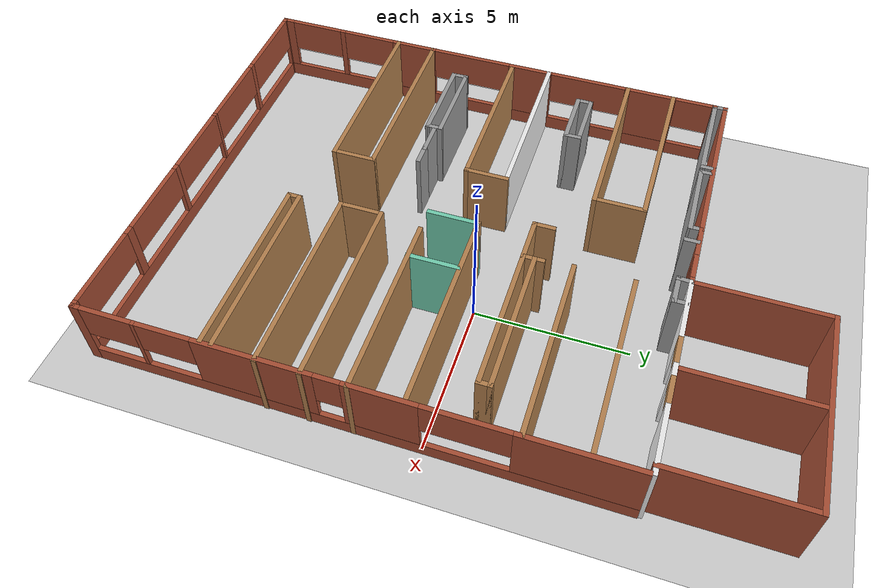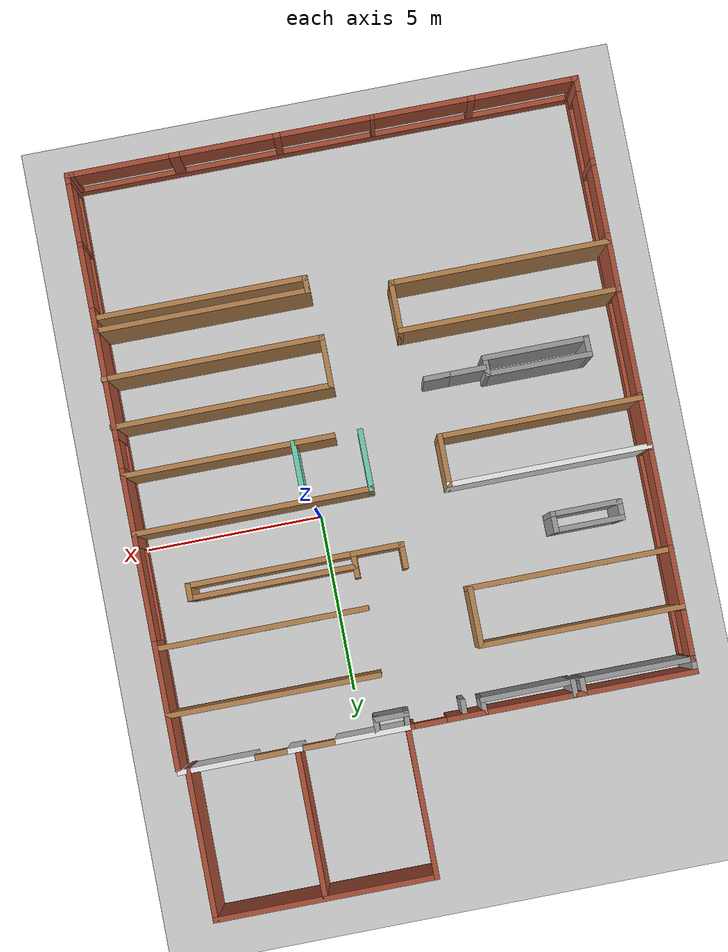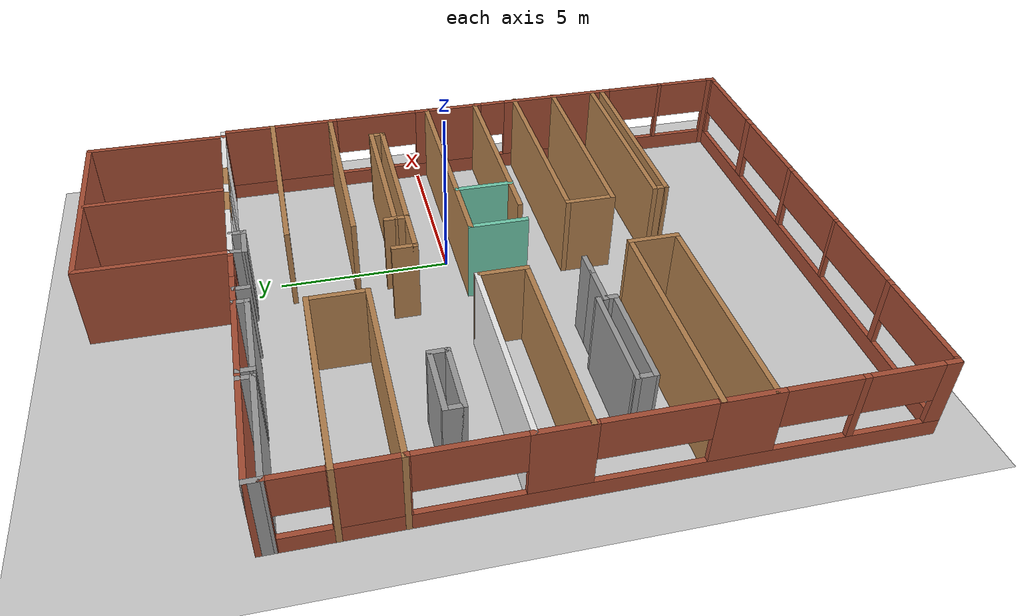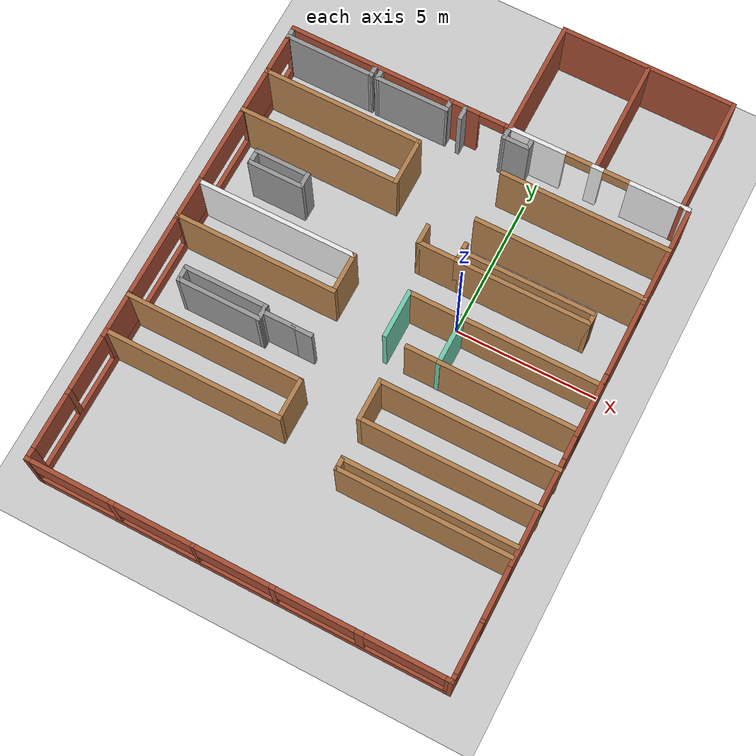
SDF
<sdf version="1.7">
 <world name="default">
  <model name="ground_plane">
   <static>1</static>
   <link name="link">
    <collision name="collision">
     <geometry><plane><normal>0 0 1</normal><size>100 100</size></plane></geometry>
     <surface>
      <contact><collide_bitmask>65535</collide_bitmask></contact>
      <friction><ode><mu>100</mu><mu2>50</mu2></ode></friction>
     </surface>
    </collision>
    <visual name="visual">
     <cast_shadows>0</cast_shadows>
     <geometry><plane><normal>0 0 1</normal><size>100 100</size></plane></geometry>
     <material>
      <script><uri>file://media/materials/scripts/gazebo.material</uri><name>Gazebo/Grey</name></script>
     </material>
    </visual>
   </link>
  </model>
  <model name="1cs_v2">
   <pose>-2.09868 -0.09237 0 0 -0 0</pose>
   <link name="Wall_0">
    <pose>-7.1889 -2.22765 0 0 -0 -1.5708</pose>
    <visual name="Wall_0_Visual_0">
     <pose>-8.16435 0 1.25 0 -0 0</pose>
     <geometry><box><size>0.171298 0.15 2.5</size></box></geometry>
     <material>
      <script><uri>file://media/materials/scripts/gazebo.material</uri><name>Gazebo/Bricks</name></script>
      <ambient>1 1 1 1</ambient>
     </material>
     <meta><layer>0</layer></meta>
    </visual>
    <collision name="Wall_0_Collision_0">
     <geometry><box><size>0.171298 0.15 2.5</size></box></geometry>
     <pose>-8.16435 0 1.25 0 -0 0</pose>
    </collision>
    <visual name="Wall_0_Visual_1">
     <pose>0.085649 0 0.25 0 -0 0</pose>
     <geometry><box><size>16.3287 0.15 0.5</size></box></geometry>
     <material>
      <script><uri>file://media/materials/scripts/gazebo.material</uri><name>Gazebo/Bricks</name></script>
      <ambient>1 1 1 1</ambient>
     </material>
     <meta><layer>0</layer></meta>
    </visual>
    <collision name="Wall_0_Collision_1">
     <geometry><box><size>16.3287 0.15 0.5</size></box></geometry>
     <pose>0.085649 0 0.25 0 -0 0</pose>
    </collision>
    <visual name="Wall_0_Visual_2">
     <pose>-5.91311 0 1.5 0 -0 0</pose>
     <geometry><box><size>1.8087 0.15 2</size></box></geometry>
     <material>
      <script><uri>file://media/materials/scripts/gazebo.material</uri><name>Gazebo/Bricks</name></script>
      <ambient>1 1 1 1</ambient>
     </material>
     <meta><layer>0</layer></meta>
    </visual>
    <collision name="Wall_0_Collision_2">
     <geometry><box><size>1.8087 0.15 2</size></box></geometry>
     <pose>-5.91311 0 1.5 0 -0 0</pose>
    </collision>
    <visual name="Wall_0_Visual_3">
     <pose>-1.54382 0 1.5 0 -0 0</pose>
     <geometry><box><size>1.60965 0.15 2</size></box></geometry>
     <material>
      <script><uri>file://media/materials/scripts/gazebo.material</uri><name>Gazebo/Bricks</name></script>
      <ambient>1 1 1 1</ambient>
     </material>
     <meta><layer>0</layer></meta>
    </visual>
    <collision name="Wall_0_Collision_3">
     <geometry><box><size>1.60965 0.15 2</size></box></geometry>
     <pose>-1.54382 0 1.5 0 -0 0</pose>
    </collision>
    <visual name="Wall_0_Visual_4">
     <pose>2.92476 0 1.5 0 -0 0</pose>
     <geometry><box><size>1.6805 0.15 2</size></box></geometry>
     <material>
      <script><uri>file://media/materials/scripts/gazebo.material</uri><name>Gazebo/Bricks</name></script>
      <ambient>1 1 1 1</ambient>
     </material>
     <meta><layer>0</layer></meta>
    </visual>
    <collision name="Wall_0_Collision_4">
     <geometry><box><size>1.6805 0.15 2</size></box></geometry>
     <pose>2.92476 0 1.5 0 -0 0</pose>
    </collision>
    <visual name="Wall_0_Visual_5">
     <pose>5.78474 0 1.5 0 -0 0</pose>
     <geometry><box><size>0.188569 0.15 2</size></box></geometry>
     <material>
      <script><uri>file://media/materials/scripts/gazebo.material</uri><name>Gazebo/Bricks</name></script>
      <ambient>1 1 1 1</ambient>
     </material>
     <meta><layer>0</layer></meta>
    </visual>
    <collision name="Wall_0_Collision_5">
     <geometry><box><size>0.188569 0.15 2</size></box></geometry>
     <pose>5.78474 0 1.5 0 -0 0</pose>
    </collision>
    <visual name="Wall_0_Visual_6">
     <pose>8.02724 0 1.5 0 -0 0</pose>
     <geometry><box><size>0.445524 0.15 2</size></box></geometry>
     <material>
      <script><uri>file://media/materials/scripts/gazebo.material</uri><name>Gazebo/Bricks</name></script>
      <ambient>1 1 1 1</ambient>
     </material>
     <meta><layer>0</layer></meta>
    </visual>
    <collision name="Wall_0_Collision_6">
     <geometry><box><size>0.445524 0.15 2</size></box></geometry>
     <pose>8.02724 0 1.5 0 -0 0</pose>
    </collision>
    <visual name="Wall_0_Visual_7">
     <pose>-7.44808 0 1.9 0 -0 0</pose>
     <geometry><box><size>1.26125 0.15 1.2</size></box></geometry>
     <material>
      <script><uri>file://media/materials/scripts/gazebo.material</uri><name>Gazebo/Bricks</name></script>
      <ambient>1 1 1 1</ambient>
     </material>
     <meta><layer>0</layer></meta>
    </visual>
    <collision name="Wall_0_Collision_7">
     <geometry><box><size>1.26125 0.15 1.2</size></box></geometry>
     <pose>-7.44808 0 1.9 0 -0 0</pose>
    </collision>
    <visual name="Wall_0_Visual_8">
     <pose>-3.6787 0 1.9 0 -0 0</pose>
     <geometry><box><size>2.66011 0.15 1.2</size></box></geometry>
     <material>
      <script><uri>file://media/materials/scripts/gazebo.material</uri><name>Gazebo/Bricks</name></script>
      <ambient>1 1 1 1</ambient>
     </material>
     <meta><layer>0</layer></meta>
    </visual>
    <collision name="Wall_0_Collision_8">
     <geometry><box><size>2.66011 0.15 1.2</size></box></geometry>
     <pose>-3.6787 0 1.9 0 -0 0</pose>
    </collision>
    <visual name="Wall_0_Visual_9">
     <pose>0.672759 0 1.9 0 -0 0</pose>
     <geometry><box><size>2.82351 0.15 1.2</size></box></geometry>
     <material>
      <script><uri>file://media/materials/scripts/gazebo.material</uri><name>Gazebo/Bricks</name></script>
      <ambient>1 1 1 1</ambient>
     </material>
     <meta><layer>0</layer></meta>
    </visual>
    <collision name="Wall_0_Collision_9">
     <geometry><box><size>2.82351 0.15 1.2</size></box></geometry>
     <pose>0.672759 0 1.9 0 -0 0</pose>
    </collision>
    <visual name="Wall_0_Visual_10">
     <pose>4.72774 0 1.9 0 -0 0</pose>
     <geometry><box><size>1.92545 0.15 1.2</size></box></geometry>
     <material>
      <script><uri>file://media/materials/scripts/gazebo.material</uri><name>Gazebo/Bricks</name></script>
      <ambient>1 1 1 1</ambient>
     </material>
     <meta><layer>0</layer></meta>
    </visual>
    <collision name="Wall_0_Collision_10">
     <geometry><box><size>1.92545 0.15 1.2</size></box></geometry>
     <pose>4.72774 0 1.9 0 -0 0</pose>
    </collision>
    <visual name="Wall_0_Visual_11">
     <pose>6.84175 0 1.9 0 -0 0</pose>
     <geometry><box><size>1.92545 0.15 1.2</size></box></geometry>
     <material>
      <script><uri>file://media/materials/scripts/gazebo.material</uri><name>Gazebo/Bricks</name></script>
      <ambient>1 1 1 1</ambient>
     </material>
     <meta><layer>0</layer></meta>
    </visual>
    <collision name="Wall_0_Collision_11">
     <geometry><box><size>1.92545 0.15 1.2</size></box></geometry>
     <pose>6.84175 0 1.9 0 -0 0</pose>
    </collision>
   </link>
   <link name="Wall_10">
    <pose>7.1611 -2.10265 0 0 -0 1.5708</pose>
    <visual name="Wall_10_Visual_0">
     <pose>-8.22126 0 1.25 0 -0 0</pose>
     <geometry><box><size>0.307478 0.15 2.5</size></box></geometry>
     <material>
      <script><uri>file://media/materials/scripts/gazebo.material</uri><name>Gazebo/Bricks</name></script>
      <ambient>1 1 1 1</ambient>
     </material>
     <meta><layer>0</layer></meta>
    </visual>
    <collision name="Wall_10_Collision_0">
     <geometry><box><size>0.307478 0.15 2.5</size></box></geometry>
     <pose>-8.22126 0 1.25 0 -0 0</pose>
    </collision>
    <visual name="Wall_10_Visual_1">
     <pose>0.153739 0 0.25 0 -0 0</pose>
     <geometry><box><size>16.4425 0.15 0.5</size></box></geometry>
     <material>
      <script><uri>file://media/materials/scripts/gazebo.material</uri><name>Gazebo/Bricks</name></script>
      <ambient>1 1 1 1</ambient>
     </material>
     <meta><layer>0</layer></meta>
    </visual>
    <collision name="Wall_10_Collision_1">
     <geometry><box><size>16.4425 0.15 0.5</size></box></geometry>
     <pose>0.153739 0 0.25 0 -0 0</pose>
    </collision>
    <visual name="Wall_10_Visual_2">
     <pose>-6.34004 0 1.5 0 -0 0</pose>
     <geometry><box><size>0.121166 0.15 2</size></box></geometry>
     <material>
      <script><uri>file://media/materials/scripts/gazebo.material</uri><name>Gazebo/Bricks</name></script>
      <ambient>1 1 1 1</ambient>
     </material>
     <meta><layer>0</layer></meta>
    </visual>
    <collision name="Wall_10_Collision_2">
     <geometry><box><size>0.121166 0.15 2</size></box></geometry>
     <pose>-6.34004 0 1.5 0 -0 0</pose>
    </collision>
    <visual name="Wall_10_Visual_3">
     <pose>-2.68236 0 1.5 0 -0 0</pose>
     <geometry><box><size>3.70831 0.15 2</size></box></geometry>
     <material>
      <script><uri>file://media/materials/scripts/gazebo.material</uri><name>Gazebo/Bricks</name></script>
      <ambient>1 1 1 1</ambient>
     </material>
     <meta><layer>0</layer></meta>
    </visual>
    <collision name="Wall_10_Collision_3">
     <geometry><box><size>3.70831 0.15 2</size></box></geometry>
     <pose>-2.68236 0 1.5 0 -0 0</pose>
    </collision>
    <visual name="Wall_10_Visual_4">
     <pose>1.08606 0 1.5 0 -0 0</pose>
     <geometry><box><size>2.22852 0.15 2</size></box></geometry>
     <material>
      <script><uri>file://media/materials/scripts/gazebo.material</uri><name>Gazebo/Bricks</name></script>
      <ambient>1 1 1 1</ambient>
     </material>
     <meta><layer>0</layer></meta>
    </visual>
    <collision name="Wall_10_Collision_4">
     <geometry><box><size>2.22852 0.15 2</size></box></geometry>
     <pose>1.08606 0 1.5 0 -0 0</pose>
    </collision>
    <visual name="Wall_10_Visual_5">
     <pose>6.58035 0 1.5 0 -0 0</pose>
     <geometry><box><size>3.5893 0.15 2</size></box></geometry>
     <material>
      <script><uri>file://media/materials/scripts/gazebo.material</uri><name>Gazebo/Bricks</name></script>
      <ambient>1 1 1 1</ambient>
     </material>
     <meta><layer>0</layer></meta>
    </visual>
    <collision name="Wall_10_Collision_5">
     <geometry><box><size>3.5893 0.15 2</size></box></geometry>
     <pose>6.58035 0 1.5 0 -0 0</pose>
    </collision>
    <visual name="Wall_10_Visual_6">
     <pose>-7.23407 0 1.9 0 -0 0</pose>
     <geometry><box><size>1.6669 0.15 1.2</size></box></geometry>
     <material>
      <script><uri>file://media/materials/scripts/gazebo.material</uri><name>Gazebo/Bricks</name></script>
      <ambient>1 1 1 1</ambient>
     </material>
     <meta><layer>0</layer></meta>
    </visual>
    <collision name="Wall_10_Collision_6">
     <geometry><box><size>1.6669 0.15 1.2</size></box></geometry>
     <pose>-7.23407 0 1.9 0 -0 0</pose>
    </collision>
    <visual name="Wall_10_Visual_7">
     <pose>-5.40799 0 1.9 0 -0 0</pose>
     <geometry><box><size>1.74294 0.15 1.2</size></box></geometry>
     <material>
      <script><uri>file://media/materials/scripts/gazebo.material</uri><name>Gazebo/Bricks</name></script>
      <ambient>1 1 1 1</ambient>
     </material>
     <meta><layer>0</layer></meta>
    </visual>
    <collision name="Wall_10_Collision_7">
     <geometry><box><size>1.74294 0.15 1.2</size></box></geometry>
     <pose>-5.40799 0 1.9 0 -0 0</pose>
    </collision>
    <visual name="Wall_10_Visual_8">
     <pose>-0.428203 0 1.9 0 -0 0</pose>
     <geometry><box><size>0.8 0.15 1.2</size></box></geometry>
     <material>
      <script><uri>file://media/materials/scripts/gazebo.material</uri><name>Gazebo/Bricks</name></script>
      <ambient>1 1 1 1</ambient>
     </material>
     <meta><layer>0</layer></meta>
    </visual>
    <collision name="Wall_10_Collision_8">
     <geometry><box><size>0.8 0.15 1.2</size></box></geometry>
     <pose>-0.428203 0 1.9 0 -0 0</pose>
    </collision>
    <visual name="Wall_10_Visual_9">
     <pose>3.49301 0 1.9 0 -0 0</pose>
     <geometry><box><size>2.58537 0.15 1.2</size></box></geometry>
     <material>
      <script><uri>file://media/materials/scripts/gazebo.material</uri><name>Gazebo/Bricks</name></script>
      <ambient>1 1 1 1</ambient>
     </material>
     <meta><layer>0</layer></meta>
    </visual>
    <collision name="Wall_10_Collision_9">
     <geometry><box><size>2.58537 0.15 1.2</size></box></geometry>
     <pose>3.49301 0 1.9 0 -0 0</pose>
    </collision>
   </link>
   <link name="Wall_101">
    <collision name="Wall_101_Collision">
     <geometry><box><size>2.66781 0.15 2.5</size></box></geometry>
     <pose>0 0 1.25 0 -0 0</pose>
    </collision>
    <visual name="Wall_101_Visual">
     <pose>0 0 1.25 0 -0 0</pose>
     <geometry><box><size>2.66781 0.15 2.5</size></box></geometry>
     <material>
      <script><uri>file://media/materials/scripts/gazebo.material</uri><name>Gazebo/Grey</name></script>
      <ambient>1 1 1 1</ambient>
     </material>
     <meta><layer>0</layer></meta>
    </visual>
    <pose>-2.59778 5.93848 0 0 -0 0.007052</pose>
   </link>
   <link name="Wall_12">
    <collision name="Wall_12_Collision">
     <geometry><box><size>0.532123 0.15 2.5</size></box></geometry>
     <pose>0 0 1.25 0 -0 0</pose>
    </collision>
    <visual name="Wall_12_Visual">
     <pose>0 0 1.25 0 -0 0</pose>
     <geometry><box><size>0.532123 0.15 2.5</size></box></geometry>
     <material>
      <script><uri>file://media/materials/scripts/gazebo.material</uri><name>Gazebo/Grey</name></script>
      <ambient>1 1 1 1</ambient>
     </material>
     <meta><layer>0</layer></meta>
    </visual>
    <pose>0.790397 6.11196 0 0 -0 -1.63317</pose>
   </link>
   <link name="Wall_14">
    <collision name="Wall_14_Collision">
     <geometry><box><size>1 0.15 2.5</size></box></geometry>
     <pose>0 0 1.25 0 -0 0</pose>
    </collision>
    <visual name="Wall_14_Visual">
     <pose>0 0 1.25 0 -0 0</pose>
     <geometry><box><size>1 0.15 2.5</size></box></geometry>
     <material>
      <script><uri>file://media/materials/scripts/gazebo.material</uri><name>Gazebo/Grey</name></script>
      <ambient>1 1 1 1</ambient>
     </material>
     <meta><layer>0</layer></meta>
    </visual>
    <pose>1.20349 5.92127 0 0 -0 0</pose>
   </link>
   <link name="Wall_15">
    <collision name="Wall_15_Collision">
     <geometry><box><size>0.5 0.15 2.5</size></box></geometry>
     <pose>0 0 1.25 0 -0 0</pose>
    </collision>
    <visual name="Wall_15_Visual">
     <pose>0 0 1.25 0 -0 0</pose>
     <geometry><box><size>0.5 0.15 2.5</size></box></geometry>
     <material>
      <script><uri>file://media/materials/scripts/gazebo.material</uri><name>Gazebo/Grey</name></script>
      <ambient>1 1 1 1</ambient>
     </material>
     <meta><layer>0</layer></meta>
    </visual>
    <pose>1.62849 6.09627 0 0 -0 1.5708</pose>
   </link>
   <link name="Wall_17">
    <collision name="Wall_17_Collision">
     <geometry><box><size>6 0.15 2.5</size></box></geometry>
     <pose>0 0 1.25 0 -0 0</pose>
    </collision>
    <visual name="Wall_17_Visual">
     <pose>0 0 1.25 0 -0 0</pose>
     <geometry><box><size>6 0.15 2.5</size></box></geometry>
     <material>
      <script><uri>file://media/materials/scripts/gazebo.material</uri><name>Gazebo/Wood</name></script>
      <ambient>1 1 1 1</ambient>
     </material>
     <meta><layer>0</layer></meta>
    </visual>
    <pose>4.23059 4.75114 0 0 -0 3.14159</pose>
   </link>
   <link name="Wall_19">
    <collision name="Wall_19_Collision">
     <geometry><box><size>6 0.15 2.5</size></box></geometry>
     <pose>0 0 1.25 0 -0 0</pose>
    </collision>
    <visual name="Wall_19_Visual">
     <pose>0 0 1.25 0 -0 0</pose>
     <geometry><box><size>6 0.15 2.5</size></box></geometry>
     <material>
      <script><uri>file://media/materials/scripts/gazebo.material</uri><name>Gazebo/Wood</name></script>
      <ambient>1 1 1 1</ambient>
     </material>
     <meta><layer>0</layer></meta>
    </visual>
    <pose>4.23059 2.90114 0 0 -0 0</pose>
   </link>
   <link name="Wall_21">
    <collision name="Wall_21_Collision">
     <geometry><box><size>5.75 0.15 2.5</size></box></geometry>
     <pose>0 0 1.25 0 -0 0</pose>
    </collision>
    <visual name="Wall_21_Visual">
     <pose>0 0 1.25 0 -0 0</pose>
     <geometry><box><size>5.75 0.15 2.5</size></box></geometry>
     <material>
      <script><uri>file://media/materials/scripts/gazebo.material</uri><name>Gazebo/Wood</name></script>
      <ambient>1 1 1 1</ambient>
     </material>
     <meta><layer>0</layer></meta>
    </visual>
    <pose>-4.39224 4.49027 0 0 -0 0</pose>
   </link>
   <link name="Wall_22">
    <collision name="Wall_22_Collision">
     <geometry><box><size>1.75 0.15 2.5</size></box></geometry>
     <pose>0 0 1.25 0 -0 0</pose>
    </collision>
    <visual name="Wall_22_Visual">
     <pose>0 0 1.25 0 -0 0</pose>
     <geometry><box><size>1.75 0.15 2.5</size></box></geometry>
     <material>
      <script><uri>file://media/materials/scripts/gazebo.material</uri><name>Gazebo/Wood</name></script>
      <ambient>1 1 1 1</ambient>
     </material>
     <meta><layer>0</layer></meta>
    </visual>
    <pose>-1.59224 3.69027 0 0 -0 -1.5708</pose>
   </link>
   <link name="Wall_23">
    <collision name="Wall_23_Collision">
     <geometry><box><size>5.75 0.15 2.5</size></box></geometry>
     <pose>0 0 1.25 0 -0 0</pose>
    </collision>
    <visual name="Wall_23_Visual">
     <pose>0 0 1.25 0 -0 0</pose>
     <geometry><box><size>5.75 0.15 2.5</size></box></geometry>
     <material>
      <script><uri>file://media/materials/scripts/gazebo.material</uri><name>Gazebo/Wood</name></script>
      <ambient>1 1 1 1</ambient>
     </material>
     <meta><layer>0</layer></meta>
    </visual>
    <pose>-4.39224 2.89027 0 0 -0 3.14159</pose>
   </link>
   <link name="Wall_27">
    <collision name="Wall_27_Collision">
     <geometry><box><size>0.5 0.15 2.5</size></box></geometry>
     <pose>0 0 1.25 0 -0 0</pose>
    </collision>
    <visual name="Wall_27_Visual">
     <pose>0 0 1.25 0 -0 0</pose>
     <geometry><box><size>0.5 0.15 2.5</size></box></geometry>
     <material>
      <script><uri>file://media/materials/scripts/gazebo.material</uri><name>Gazebo/Grey</name></script>
      <ambient>1 1 1 1</ambient>
     </material>
     <meta><layer>0</layer></meta>
    </visual>
    <pose>-0.79635 6.07769 0 0 -0 1.5708</pose>
   </link>
   <link name="Wall_3">
    <collision name="Wall_3_Collision">
     <geometry><box><size>0.5 0.15 2.5</size></box></geometry>
     <pose>0 0 1.25 0 -0 0</pose>
    </collision>
    <visual name="Wall_3_Visual">
     <pose>0 0 1.25 0 -0 0</pose>
     <geometry><box><size>0.5 0.15 2.5</size></box></geometry>
     <material>
      <script><uri>file://media/materials/scripts/gazebo.material</uri><name>Gazebo/Grey</name></script>
      <ambient>1 1 1 1</ambient>
     </material>
     <meta><layer>0</layer></meta>
    </visual>
    <pose>-1.3389 6.12235 0 0 -0 1.5708</pose>
   </link>
   <link name="Wall_33">
    <collision name="Wall_33_Collision">
     <geometry><box><size>4.25 0.15 2.5</size></box></geometry>
     <pose>0 0 1.25 0 -0 0</pose>
    </collision>
    <visual name="Wall_33_Visual">
     <pose>0 0 1.25 0 -0 0</pose>
     <geometry><box><size>4.25 0.15 2.5</size></box></geometry>
     <material>
      <script><uri>file://media/materials/scripts/gazebo.material</uri><name>Gazebo/Bricks</name></script>
      <ambient>1 1 1 1</ambient>
     </material>
     <meta><layer>0</layer></meta>
    </visual>
    <pose>0.802307 8.35265 0 0 -0 1.5708</pose>
   </link>
   <link name="Wall_34">
    <collision name="Wall_34_Collision">
     <geometry><box><size>6.25 0.15 2.5</size></box></geometry>
     <pose>0 0 1.25 0 -0 0</pose>
    </collision>
    <visual name="Wall_34_Visual">
     <pose>0 0 1.25 0 -0 0</pose>
     <geometry><box><size>6.25 0.15 2.5</size></box></geometry>
     <material>
      <script><uri>file://media/materials/scripts/gazebo.material</uri><name>Gazebo/Bricks</name></script>
      <ambient>1 1 1 1</ambient>
     </material>
     <meta><layer>0</layer></meta>
    </visual>
    <pose>3.85231 10.4026 0 0 -0 0</pose>
   </link>
   <link name="Wall_35">
    <collision name="Wall_35_Collision">
     <geometry><box><size>4.25 0.15 2.5</size></box></geometry>
     <pose>0 0 1.25 0 -0 0</pose>
    </collision>
    <visual name="Wall_35_Visual">
     <pose>0 0 1.25 0 -0 0</pose>
     <geometry><box><size>4.25 0.15 2.5</size></box></geometry>
     <material>
      <script><uri>file://media/materials/scripts/gazebo.material</uri><name>Gazebo/Bricks</name></script>
      <ambient>1 1 1 1</ambient>
     </material>
     <meta><layer>0</layer></meta>
    </visual>
    <pose>6.90231 8.35265 0 0 -0 -1.5708</pose>
   </link>
   <link name="Wall_37">
    <collision name="Wall_37_Collision">
     <geometry><box><size>4 0.15 2.5</size></box></geometry>
     <pose>0 0 1.25 0 -0 0</pose>
    </collision>
    <visual name="Wall_37_Visual">
     <pose>0 0 1.25 0 -0 0</pose>
     <geometry><box><size>4 0.15 2.5</size></box></geometry>
     <material>
      <script><uri>file://media/materials/scripts/gazebo.material</uri><name>Gazebo/Bricks</name></script>
      <ambient>1 1 1 1</ambient>
     </material>
     <meta><layer>0</layer></meta>
    </visual>
    <pose>3.8726 8.38806 0 0 -0 -1.5708</pose>
   </link>
   <link name="Wall_39">
    <collision name="Wall_39_Collision">
     <geometry><box><size>0.75 0.15 2.5</size></box></geometry>
     <pose>0 0 1.25 0 -0 0</pose>
    </collision>
    <visual name="Wall_39_Visual">
     <pose>0 0 1.25 0 -0 0</pose>
     <geometry><box><size>0.75 0.15 2.5</size></box></geometry>
     <material>
      <script><uri>file://media/materials/scripts/gazebo.material</uri><name>Gazebo/Wood</name></script>
      <ambient>1 1 1 1</ambient>
     </material>
     <meta><layer>0</layer></meta>
    </visual>
    <pose>0.023831 1.66523 0 0 -0 -1.5708</pose>
   </link>
   <link name="Wall_4">
    <pose>-0.268298 6.3 0 0 -0 0.002472</pose>
    <visual name="Wall_4_Visual_0">
     <pose>-0.580437 0 1.25 0 -0 0</pose>
     <geometry><box><size>1.13034 0.15 2.5</size></box></geometry>
     <material>
      <script><uri>file://media/materials/scripts/gazebo.material</uri><name>Gazebo/Bricks</name></script>
      <ambient>1 1 1 1</ambient>
     </material>
     <meta><layer>0</layer></meta>
    </visual>
    <collision name="Wall_4_Collision_0">
     <geometry><box><size>1.13034 0.15 2.5</size></box></geometry>
     <pose>-0.580437 0 1.25 0 -0 0</pose>
    </collision>
    <visual name="Wall_4_Visual_1">
     <pose>1.01517 0 1.25 0 -0 0</pose>
     <geometry><box><size>0.260874 0.15 2.5</size></box></geometry>
     <material>
      <script><uri>file://media/materials/scripts/gazebo.material</uri><name>Gazebo/Bricks</name></script>
      <ambient>1 1 1 1</ambient>
     </material>
     <meta><layer>0</layer></meta>
    </visual>
    <collision name="Wall_4_Collision_1">
     <geometry><box><size>0.260874 0.15 2.5</size></box></geometry>
     <pose>1.01517 0 1.25 0 -0 0</pose>
    </collision>
    <visual name="Wall_4_Visual_2">
     <pose>0.434734 0 2.25 0 -0 0</pose>
     <geometry><box><size>0.9 0.15 0.5</size></box></geometry>
     <material>
      <script><uri>file://media/materials/scripts/gazebo.material</uri><name>Gazebo/Bricks</name></script>
      <ambient>1 1 1 1</ambient>
     </material>
     <meta><layer>0</layer></meta>
    </visual>
    <collision name="Wall_4_Collision_2">
     <geometry><box><size>0.9 0.15 0.5</size></box></geometry>
     <pose>0.434734 0 2.25 0 -0 0</pose>
    </collision>
   </link>
   <link name="Wall_40">
    <collision name="Wall_40_Collision">
     <geometry><box><size>1.5 0.15 2.5</size></box></geometry>
     <pose>0 0 1.25 0 -0 0</pose>
    </collision>
    <visual name="Wall_40_Visual">
     <pose>0 0 1.25 0 -0 0</pose>
     <geometry><box><size>1.5 0.15 2.5</size></box></geometry>
     <material>
      <script><uri>file://media/materials/scripts/gazebo.material</uri><name>Gazebo/Wood</name></script>
      <ambient>1 1 1 1</ambient>
     </material>
     <meta><layer>0</layer></meta>
    </visual>
    <pose>0.698831 1.36523 0 0 -0 0</pose>
   </link>
   <link name="Wall_41">
    <collision name="Wall_41_Collision">
     <geometry><box><size>4.75 0.15 2.5</size></box></geometry>
     <pose>0 0 1.25 0 -0 0</pose>
    </collision>
    <visual name="Wall_41_Visual">
     <pose>0 0 1.25 0 -0 0</pose>
     <geometry><box><size>4.75 0.15 2.5</size></box></geometry>
     <material>
      <script><uri>file://media/materials/scripts/gazebo.material</uri><name>Gazebo/Wood</name></script>
      <ambient>1 1 1 1</ambient>
     </material>
     <meta><layer>0</layer></meta>
    </visual>
    <pose>3.67383 1.36523 0 0 -0 0</pose>
   </link>
   <link name="Wall_42">
    <collision name="Wall_42_Collision">
     <geometry><box><size>0.5 0.15 2.5</size></box></geometry>
     <pose>0 0 1.25 0 -0 0</pose>
    </collision>
    <visual name="Wall_42_Visual">
     <pose>0 0 1.25 0 -0 0</pose>
     <geometry><box><size>0.5 0.15 2.5</size></box></geometry>
     <material>
      <script><uri>file://media/materials/scripts/gazebo.material</uri><name>Gazebo/Wood</name></script>
      <ambient>1 1 1 1</ambient>
     </material>
     <meta><layer>0</layer></meta>
    </visual>
    <pose>5.97383 1.54023 0 0 -0 1.5708</pose>
   </link>
   <link name="Wall_43">
    <collision name="Wall_43_Collision">
     <geometry><box><size>4.75 0.15 2.5</size></box></geometry>
     <pose>0 0 1.25 0 -0 0</pose>
    </collision>
    <visual name="Wall_43_Visual">
     <pose>0 0 1.25 0 -0 0</pose>
     <geometry><box><size>4.75 0.15 2.5</size></box></geometry>
     <material>
      <script><uri>file://media/materials/scripts/gazebo.material</uri><name>Gazebo/Wood</name></script>
      <ambient>1 1 1 1</ambient>
     </material>
     <meta><layer>0</layer></meta>
    </visual>
    <pose>3.67383 1.71523 0 0 -0 3.14159</pose>
   </link>
   <link name="Wall_45">
    <collision name="Wall_45_Collision">
     <geometry><box><size>0.75 0.15 2.5</size></box></geometry>
     <pose>0 0 1.25 0 -0 0</pose>
    </collision>
    <visual name="Wall_45_Visual">
     <pose>0 0 1.25 0 -0 0</pose>
     <geometry><box><size>0.75 0.15 2.5</size></box></geometry>
     <material>
      <script><uri>file://media/materials/scripts/gazebo.material</uri><name>Gazebo/Wood</name></script>
      <ambient>1 1 1 1</ambient>
     </material>
     <meta><layer>0</layer></meta>
    </visual>
    <pose>1.37383 1.66523 0 0 -0 1.5708</pose>
   </link>
   <link name="Wall_47">
    <collision name="Wall_47_Collision">
     <geometry><box><size>1.75 0.15 2.5</size></box></geometry>
     <pose>0 0 1.25 0 -0 0</pose>
    </collision>
    <visual name="Wall_47_Visual">
     <pose>0 0 1.25 0 -0 0</pose>
     <geometry><box><size>1.75 0.15 2.5</size></box></geometry>
     <material>
      <script><uri>file://media/materials/scripts/gazebo.material</uri><name>Gazebo/Grey</name></script>
      <ambient>0.435294 0.796078 0.67451 1</ambient>
     </material>
     <meta><layer>0</layer></meta>
    </visual>
    <pose>0.541626 -1.09292 0 0 -0 1.5708</pose>
   </link>
   <link name="Wall_49">
    <collision name="Wall_49_Collision">
     <geometry><box><size>6.75 0.15 2.5</size></box></geometry>
     <pose>0 0 1.25 0 -0 0</pose>
    </collision>
    <visual name="Wall_49_Visual">
     <pose>0 0 1.25 0 -0 0</pose>
     <geometry><box><size>6.75 0.15 2.5</size></box></geometry>
     <material>
      <script><uri>file://media/materials/scripts/gazebo.material</uri><name>Gazebo/Wood</name></script>
      <ambient>1 1 1 1</ambient>
     </material>
     <meta><layer>0</layer></meta>
    </visual>
    <pose>3.84163 -0.29292 0 0 -0 0</pose>
   </link>
   <link name="Wall_5">
    <pose>3.96426 6.31134 0 0 -0 0.00275</pose>
    <visual name="Wall_5_Visual_0">
     <pose>-2.1918 0 1.25 0 -0 0</pose>
     <geometry><box><size>2.09034 0.15 2.5</size></box></geometry>
     <material><script><name>Gazebo/White</name></script><ambient>1 1 1 1</ambient></material>
     <meta><layer>0</layer></meta>
    </visual>
    <collision name="Wall_5_Collision_0">
     <geometry><box><size>2.09034 0.15 2.5</size></box></geometry>
     <pose>-2.1918 0 1.25 0 -0 0</pose>
    </collision>
    <visual name="Wall_5_Visual_1">
     <pose>-0.031435 0 1.25 0 -0 0</pose>
     <geometry><box><size>0.430392 0.15 2.5</size></box></geometry>
     <material><script><name>Gazebo/White</name></script><ambient>1 1 1 1</ambient></material>
     <meta><layer>0</layer></meta>
    </visual>
    <collision name="Wall_5_Collision_1">
     <geometry><box><size>0.430392 0.15 2.5</size></box></geometry>
     <pose>-0.031435 0 1.25 0 -0 0</pose>
    </collision>
    <visual name="Wall_5_Visual_2">
     <pose>2.16037 0 1.25 0 -0 0</pose>
     <geometry><box><size>2.15321 0.15 2.5</size></box></geometry>
     <material><script><name>Gazebo/White</name></script><ambient>1 1 1 1</ambient></material>
     <meta><layer>0</layer></meta>
    </visual>
    <collision name="Wall_5_Collision_2">
     <geometry><box><size>2.15321 0.15 2.5</size></box></geometry>
     <pose>2.16037 0 1.25 0 -0 0</pose>
    </collision>
    <visual name="Wall_5_Visual_3">
     <pose>-0.69663 0 2.25 0 -0 0</pose>
     <geometry><box><size>0.9 0.15 0.5</size></box></geometry>
     <material>
      <script><uri>file://media/materials/scripts/gazebo.material</uri><name>Gazebo/Wood</name></script>
      <ambient>1 1 1 1</ambient>
     </material>
     <meta><layer>0</layer></meta>
    </visual>
    <collision name="Wall_5_Collision_3">
     <geometry><box><size>0.9 0.15 0.5</size></box></geometry>
     <pose>-0.69663 0 2.25 0 -0 0</pose>
    </collision>
    <visual name="Wall_5_Visual_4">
     <pose>0.633761 0 2.25 0 -0 0</pose>
     <geometry><box><size>0.9 0.15 0.5</size></box></geometry>
     <material>
      <script><uri>file://media/materials/scripts/gazebo.material</uri><name>Gazebo/Wood</name></script>
      <ambient>1 1 1 1</ambient>
     </material>
     <meta><layer>0</layer></meta>
    </visual>
    <collision name="Wall_5_Collision_4">
     <geometry><box><size>0.9 0.15 0.5</size></box></geometry>
     <pose>0.633761 0 2.25 0 -0 0</pose>
    </collision>
   </link>
   <link name="Wall_51">
    <collision name="Wall_51_Collision">
     <geometry><box><size>6 0.15 2.5</size></box></geometry>
     <pose>0 0 1.25 0 -0 0</pose>
    </collision>
    <visual name="Wall_51_Visual">
     <pose>0 0 1.25 0 -0 0</pose>
     <geometry><box><size>6 0.15 2.5</size></box></geometry>
     <material>
      <script><uri>file://media/materials/scripts/gazebo.material</uri><name>Gazebo/Wood</name></script>
      <ambient>1 1 1 1</ambient>
     </material>
     <meta><layer>0</layer></meta>
    </visual>
    <pose>4.24325 -1.92151 0 0 -0 3.14159</pose>
   </link>
   <link name="Wall_53">
    <collision name="Wall_53_Collision">
     <geometry><box><size>1.75 0.15 2.5</size></box></geometry>
     <pose>0 0 1.25 0 -0 0</pose>
    </collision>
    <visual name="Wall_53_Visual">
     <pose>0 0 1.25 0 -0 0</pose>
     <geometry><box><size>1.75 0.15 2.5</size></box></geometry>
     <material>
      <script><uri>file://media/materials/scripts/gazebo.material</uri><name>Gazebo/Grey</name></script>
      <ambient>0.435294 0.796078 0.67451 1</ambient>
     </material>
     <meta><layer>0</layer></meta>
    </visual>
    <pose>2.41126 -1.13203 0 0 -0 -1.5708</pose>
   </link>
   <link name="Wall_55">
    <collision name="Wall_55_Collision">
     <geometry><box><size>2 0.15 2.5</size></box></geometry>
     <pose>0 0 1.25 0 -0 0</pose>
    </collision>
    <visual name="Wall_55_Visual">
     <pose>0 0 1.25 0 -0 0</pose>
     <geometry><box><size>2 0.15 2.5</size></box></geometry>
     <material>
      <script><uri>file://media/materials/scripts/gazebo.material</uri><name>Gazebo/Grey</name></script>
      <ambient>1 1 1 1</ambient>
     </material>
     <meta><layer>0</layer></meta>
    </visual>
    <pose>-5.13352 1.79046 0 0 -0 0</pose>
   </link>
   <link name="Wall_56">
    <collision name="Wall_56_Collision">
     <geometry><box><size>0.594464 0.15 2.5</size></box></geometry>
     <pose>0 0 1.25 0 -0 0</pose>
    </collision>
    <visual name="Wall_56_Visual">
     <pose>0 0 1.25 0 -0 0</pose>
     <geometry><box><size>0.594464 0.15 2.5</size></box></geometry>
     <material>
      <script><uri>file://media/materials/scripts/gazebo.material</uri><name>Gazebo/Grey</name></script>
      <ambient>1 1 1 1</ambient>
     </material>
     <meta><layer>0</layer></meta>
    </visual>
    <pose>-4.20852 1.56823 0 0 -0 -1.5708</pose>
   </link>
   <link name="Wall_57">
    <collision name="Wall_57_Collision">
     <geometry><box><size>2 0.15 2.5</size></box></geometry>
     <pose>0 0 1.25 0 -0 0</pose>
    </collision>
    <visual name="Wall_57_Visual">
     <pose>0 0 1.25 0 -0 0</pose>
     <geometry><box><size>2 0.15 2.5</size></box></geometry>
     <material>
      <script><uri>file://media/materials/scripts/gazebo.material</uri><name>Gazebo/Grey</name></script>
      <ambient>1 1 1 1</ambient>
     </material>
     <meta><layer>0</layer></meta>
    </visual>
    <pose>-5.13352 1.34102 0 0 -0 3.14159</pose>
   </link>
   <link name="Wall_58">
    <collision name="Wall_58_Collision">
     <geometry><box><size>0.594464 0.15 2.5</size></box></geometry>
     <pose>0 0 1.25 0 -0 0</pose>
    </collision>
    <visual name="Wall_58_Visual">
     <pose>0 0 1.25 0 -0 0</pose>
     <geometry><box><size>0.594464 0.15 2.5</size></box></geometry>
     <material>
      <script><uri>file://media/materials/scripts/gazebo.material</uri><name>Gazebo/Grey</name></script>
      <ambient>1 1 1 1</ambient>
     </material>
     <meta><layer>0</layer></meta>
    </visual>
    <pose>-6.05852 1.56823 0 0 -0 1.5708</pose>
   </link>
   <link name="Wall_60">
    <collision name="Wall_60_Collision">
     <geometry><box><size>5.75 0.15 2.5</size></box></geometry>
     <pose>0 0 1.25 0 -0 0</pose>
    </collision>
    <visual name="Wall_60_Visual">
     <pose>0 0 1.25 0 -0 0</pose>
     <geometry><box><size>5.75 0.15 2.5</size></box></geometry>
     <material><script><name>Gazebo/White</name></script><ambient>1 1 1 1</ambient></material>
     <meta><layer>0</layer></meta>
    </visual>
    <pose>-4.37717 0.005593 0 0 -0 0</pose>
   </link>
   <link name="Wall_61">
    <collision name="Wall_61_Collision">
     <geometry><box><size>1.5 0.15 2.5</size></box></geometry>
     <pose>0 0 1.25 0 -0 0</pose>
    </collision>
    <visual name="Wall_61_Visual">
     <pose>0 0 1.25 0 -0 0</pose>
     <geometry><box><size>1.5 0.15 2.5</size></box></geometry>
     <material>
      <script><uri>file://media/materials/scripts/gazebo.material</uri><name>Gazebo/Wood</name></script>
      <ambient>1 1 1 1</ambient>
     </material>
     <meta><layer>0</layer></meta>
    </visual>
    <pose>-1.57717 -0.669407 0 0 -0 -1.5708</pose>
   </link>
   <link name="Wall_62">
    <collision name="Wall_62_Collision">
     <geometry><box><size>5.75 0.15 2.5</size></box></geometry>
     <pose>0 0 1.25 0 -0 0</pose>
    </collision>
    <visual name="Wall_62_Visual">
     <pose>0 0 1.25 0 -0 0</pose>
     <geometry><box><size>5.75 0.15 2.5</size></box></geometry>
     <material>
      <script><uri>file://media/materials/scripts/gazebo.material</uri><name>Gazebo/Wood</name></script>
      <ambient>1 1 1 1</ambient>
     </material>
     <meta><layer>0</layer></meta>
    </visual>
    <pose>-4.37717 -1.34441 0 0 -0 3.14159</pose>
   </link>
   <link name="Wall_68">
    <collision name="Wall_68_Collision">
     <geometry><box><size>3 0.15 2.5</size></box></geometry>
     <pose>0 0 1.25 0 -0 0</pose>
    </collision>
    <visual name="Wall_68_Visual">
     <pose>0 0 1.25 0 -0 0</pose>
     <geometry><box><size>3 0.15 2.5</size></box></geometry>
     <material>
      <script><uri>file://media/materials/scripts/gazebo.material</uri><name>Gazebo/Grey</name></script>
      <ambient>1 1 1 1</ambient>
     </material>
     <meta><layer>0</layer></meta>
    </visual>
    <pose>-4.62476 -3.236 0 0 -0 3.14159</pose>
   </link>
   <link name="Wall_69">
    <collision name="Wall_69_Collision">
     <geometry><box><size>0.600122 0.15 2.5</size></box></geometry>
     <pose>0 0 1.25 0 -0 0</pose>
    </collision>
    <visual name="Wall_69_Visual">
     <pose>0 0 1.25 0 -0 0</pose>
     <geometry><box><size>0.600122 0.15 2.5</size></box></geometry>
     <material>
      <script><uri>file://media/materials/scripts/gazebo.material</uri><name>Gazebo/Grey</name></script>
      <ambient>1 1 1 1</ambient>
     </material>
     <meta><layer>0</layer></meta>
    </visual>
    <pose>-6.05224 -3.01128 0 0 -0 1.58186</pose>
   </link>
   <link name="Wall_71">
    <collision name="Wall_71_Collision">
     <geometry><box><size>3 0.15 2.5</size></box></geometry>
     <pose>0 0 1.25 0 -0 0</pose>
    </collision>
    <visual name="Wall_71_Visual">
     <pose>0 0 1.25 0 -0 0</pose>
     <geometry><box><size>3 0.15 2.5</size></box></geometry>
     <material>
      <script><uri>file://media/materials/scripts/gazebo.material</uri><name>Gazebo/Grey</name></script>
      <ambient>1 1 1 1</ambient>
     </material>
     <meta><layer>0</layer></meta>
    </visual>
    <pose>-4.6347 -2.78656 0 0 -0 0</pose>
   </link>
   <link name="Wall_72">
    <collision name="Wall_72_Collision">
     <geometry><box><size>0.600122 0.15 2.5</size></box></geometry>
     <pose>0 0 1.25 0 -0 0</pose>
    </collision>
    <visual name="Wall_72_Visual">
     <pose>0 0 1.25 0 -0 0</pose>
     <geometry><box><size>0.600122 0.15 2.5</size></box></geometry>
     <material>
      <script><uri>file://media/materials/scripts/gazebo.material</uri><name>Gazebo/Grey</name></script>
      <ambient>1 1 1 1</ambient>
     </material>
     <meta><layer>0</layer></meta>
    </visual>
    <pose>-3.20224 -3.01128 0 0 -0 -1.55973</pose>
   </link>
   <link name="Wall_75">
    <collision name="Wall_75_Collision">
     <geometry><box><size>1.25 0.15 2.5</size></box></geometry>
     <pose>0 0 1.25 0 -0 0</pose>
    </collision>
    <visual name="Wall_75_Visual">
     <pose>0 0 1.25 0 -0 0</pose>
     <geometry><box><size>1.25 0.15 2.5</size></box></geometry>
     <material>
      <script><uri>file://media/materials/scripts/gazebo.material</uri><name>Gazebo/Grey</name></script>
      <ambient>1 1 1 1</ambient>
     </material>
     <meta><layer>0</layer></meta>
    </visual>
    <pose>-2.66094 -2.97249 0 0 -0 3.14159</pose>
   </link>
   <link name="Wall_77">
    <collision name="Wall_77_Collision">
     <geometry><box><size>0.75 0.15 2.5</size></box></geometry>
     <pose>0 0 1.25 0 -0 0</pose>
    </collision>
    <visual name="Wall_77_Visual">
     <pose>0 0 1.25 0 -0 0</pose>
     <geometry><box><size>0.75 0.15 2.5</size></box></geometry>
     <material>
      <script><uri>file://media/materials/scripts/gazebo.material</uri><name>Gazebo/Grey</name></script>
      <ambient>1 1 1 1</ambient>
     </material>
     <meta><layer>0</layer></meta>
    </visual>
    <pose>-1.81094 -2.97249 0 0 -0 0</pose>
   </link>
   <link name="Wall_79">
    <collision name="Wall_79_Collision">
     <geometry><box><size>6 0.15 2.5</size></box></geometry>
     <pose>0 0 1.25 0 -0 0</pose>
    </collision>
    <visual name="Wall_79_Visual">
     <pose>0 0 1.25 0 -0 0</pose>
     <geometry><box><size>6 0.15 2.5</size></box></geometry>
     <material>
      <script><uri>file://media/materials/scripts/gazebo.material</uri><name>Gazebo/Wood</name></script>
      <ambient>1 1 1 1</ambient>
     </material>
     <meta><layer>0</layer></meta>
    </visual>
    <pose>4.16138 -6.00316 0 0 -0 3.14159</pose>
   </link>
   <link name="Wall_80">
    <collision name="Wall_80_Collision">
     <geometry><box><size>0.5 0.15 2.5</size></box></geometry>
     <pose>0 0 1.25 0 -0 0</pose>
    </collision>
    <visual name="Wall_80_Visual">
     <pose>0 0 1.25 0 -0 0</pose>
     <geometry><box><size>0.5 0.15 2.5</size></box></geometry>
     <material>
      <script><uri>file://media/materials/scripts/gazebo.material</uri><name>Gazebo/Wood</name></script>
      <ambient>1 1 1 1</ambient>
     </material>
     <meta><layer>0</layer></meta>
    </visual>
    <pose>1.23638 -6.17816 0 0 -0 -1.5708</pose>
   </link>
   <link name="Wall_81">
    <collision name="Wall_81_Collision">
     <geometry><box><size>6 0.15 2.5</size></box></geometry>
     <pose>0 0 1.25 0 -0 0</pose>
    </collision>
    <visual name="Wall_81_Visual">
     <pose>0 0 1.25 0 -0 0</pose>
     <geometry><box><size>6 0.15 2.5</size></box></geometry>
     <material>
      <script><uri>file://media/materials/scripts/gazebo.material</uri><name>Gazebo/Wood</name></script>
      <ambient>1 1 1 1</ambient>
     </material>
     <meta><layer>0</layer></meta>
    </visual>
    <pose>4.16138 -6.35316 0 0 -0 0</pose>
   </link>
   <link name="Wall_83">
    <collision name="Wall_83_Collision">
     <geometry><box><size>6.25 0.15 2.5</size></box></geometry>
     <pose>0 0 1.25 0 -0 0</pose>
    </collision>
    <visual name="Wall_83_Visual">
     <pose>0 0 1.25 0 -0 0</pose>
     <geometry><box><size>6.25 0.15 2.5</size></box></geometry>
     <material>
      <script><uri>file://media/materials/scripts/gazebo.material</uri><name>Gazebo/Wood</name></script>
      <ambient>1 1 1 1</ambient>
     </material>
     <meta><layer>0</layer></meta>
    </visual>
    <pose>4.14224 -3.29617 0 0 -0 3.14159</pose>
   </link>
   <link name="Wall_84">
    <collision name="Wall_84_Collision">
     <geometry><box><size>1.5 0.15 2.5</size></box></geometry>
     <pose>0 0 1.25 0 -0 0</pose>
    </collision>
    <visual name="Wall_84_Visual">
     <pose>0 0 1.25 0 -0 0</pose>
     <geometry><box><size>1.5 0.15 2.5</size></box></geometry>
     <material>
      <script><uri>file://media/materials/scripts/gazebo.material</uri><name>Gazebo/Wood</name></script>
      <ambient>1 1 1 1</ambient>
     </material>
     <meta><layer>0</layer></meta>
    </visual>
    <pose>1.09224 -3.97117 0 0 -0 -1.5708</pose>
   </link>
   <link name="Wall_85">
    <collision name="Wall_85_Collision">
     <geometry><box><size>6.25 0.15 2.5</size></box></geometry>
     <pose>0 0 1.25 0 -0 0</pose>
    </collision>
    <visual name="Wall_85_Visual">
     <pose>0 0 1.25 0 -0 0</pose>
     <geometry><box><size>6.25 0.15 2.5</size></box></geometry>
     <material>
      <script><uri>file://media/materials/scripts/gazebo.material</uri><name>Gazebo/Wood</name></script>
      <ambient>1 1 1 1</ambient>
     </material>
     <meta><layer>0</layer></meta>
    </visual>
    <pose>4.14224 -4.64617 0 0 -0 0</pose>
   </link>
   <link name="Wall_87">
    <collision name="Wall_87_Collision">
     <geometry><box><size>6.25 0.15 2.5</size></box></geometry>
     <pose>0 0 1.25 0 -0 0</pose>
    </collision>
    <visual name="Wall_87_Visual">
     <pose>0 0 1.25 0 -0 0</pose>
     <geometry><box><size>6.25 0.15 2.5</size></box></geometry>
     <material>
      <script><uri>file://media/materials/scripts/gazebo.material</uri><name>Gazebo/Wood</name></script>
      <ambient>1 1 1 1</ambient>
     </material>
     <meta><layer>0</layer></meta>
    </visual>
    <pose>-4.12449 -4.41526 0 0 -0 0</pose>
   </link>
   <link name="Wall_88">
    <collision name="Wall_88_Collision">
     <geometry><box><size>1.5 0.15 2.5</size></box></geometry>
     <pose>0 0 1.25 0 -0 0</pose>
    </collision>
    <visual name="Wall_88_Visual">
     <pose>0 0 1.25 0 -0 0</pose>
     <geometry><box><size>1.5 0.15 2.5</size></box></geometry>
     <material>
      <script><uri>file://media/materials/scripts/gazebo.material</uri><name>Gazebo/Wood</name></script>
      <ambient>1 1 1 1</ambient>
     </material>
     <meta><layer>0</layer></meta>
    </visual>
    <pose>-1.07449 -5.09026 0 0 -0 -1.5708</pose>
   </link>
   <link name="Wall_89">
    <collision name="Wall_89_Collision">
     <geometry><box><size>6.25 0.15 2.5</size></box></geometry>
     <pose>0 0 1.25 0 -0 0</pose>
    </collision>
    <visual name="Wall_89_Visual">
     <pose>0 0 1.25 0 -0 0</pose>
     <geometry><box><size>6.25 0.15 2.5</size></box></geometry>
     <material>
      <script><uri>file://media/materials/scripts/gazebo.material</uri><name>Gazebo/Wood</name></script>
      <ambient>1 1 1 1</ambient>
     </material>
     <meta><layer>0</layer></meta>
    </visual>
    <pose>-4.12449 -5.76526 0 0 -0 3.14159</pose>
   </link>
   <link name="Wall_9">
    <pose>-0.013903 -10.4026 0 0 -0 0</pose>
    <visual name="Wall_9_Visual_0">
     <pose>-7.14611 0 1.25 0 -0 0</pose>
     <geometry><box><size>0.20778 0.15 2.5</size></box></geometry>
     <material>
      <script><uri>file://media/materials/scripts/gazebo.material</uri><name>Gazebo/Bricks</name></script>
      <ambient>1 1 1 1</ambient>
     </material>
     <meta><layer>0</layer></meta>
    </visual>
    <collision name="Wall_9_Collision_0">
     <geometry><box><size>0.20778 0.15 2.5</size></box></geometry>
     <pose>-7.14611 0 1.25 0 -0 0</pose>
    </collision>
    <visual name="Wall_9_Visual_1">
     <pose>0.10389 0 0.25 0 -0 0</pose>
     <geometry><box><size>14.2922 0.15 0.5</size></box></geometry>
     <material>
      <script><uri>file://media/materials/scripts/gazebo.material</uri><name>Gazebo/Bricks</name></script>
      <ambient>1 1 1 1</ambient>
     </material>
     <meta><layer>0</layer></meta>
    </visual>
    <collision name="Wall_9_Collision_1">
     <geometry><box><size>14.2922 0.15 0.5</size></box></geometry>
     <pose>0.10389 0 0.25 0 -0 0</pose>
    </collision>
    <visual name="Wall_9_Visual_2">
     <pose>-4.21104 0 1.5 0 -0 0</pose>
     <geometry><box><size>0.199329 0.15 2</size></box></geometry>
     <material>
      <script><uri>file://media/materials/scripts/gazebo.material</uri><name>Gazebo/Bricks</name></script>
      <ambient>1 1 1 1</ambient>
     </material>
     <meta><layer>0</layer></meta>
    </visual>
    <collision name="Wall_9_Collision_2">
     <geometry><box><size>0.199329 0.15 2</size></box></geometry>
     <pose>-4.21104 0 1.5 0 -0 0</pose>
    </collision>
    <visual name="Wall_9_Visual_3">
     <pose>-1.41561 0 1.5 0 -0 0</pose>
     <geometry><box><size>0.119416 0.15 2</size></box></geometry>
     <material>
      <script><uri>file://media/materials/scripts/gazebo.material</uri><name>Gazebo/Bricks</name></script>
      <ambient>1 1 1 1</ambient>
     </material>
     <meta><layer>0</layer></meta>
    </visual>
    <collision name="Wall_9_Collision_3">
     <geometry><box><size>0.119416 0.15 2</size></box></geometry>
     <pose>-1.41561 0 1.5 0 -0 0</pose>
    </collision>
    <visual name="Wall_9_Visual_4">
     <pose>1.27617 0 1.5 0 -0 0</pose>
     <geometry><box><size>0.196534 0.15 2</size></box></geometry>
     <material>
      <script><uri>file://media/materials/scripts/gazebo.material</uri><name>Gazebo/Bricks</name></script>
      <ambient>1 1 1 1</ambient>
     </material>
     <meta><layer>0</layer></meta>
    </visual>
    <collision name="Wall_9_Collision_4">
     <geometry><box><size>0.196534 0.15 2</size></box></geometry>
     <pose>1.27617 0 1.5 0 -0 0</pose>
    </collision>
    <visual name="Wall_9_Visual_5">
     <pose>4.16379 0 1.5 0 -0 0</pose>
     <geometry><box><size>0.302007 0.15 2</size></box></geometry>
     <material>
      <script><uri>file://media/materials/scripts/gazebo.material</uri><name>Gazebo/Bricks</name></script>
      <ambient>1 1 1 1</ambient>
     </material>
     <meta><layer>0</layer></meta>
    </visual>
    <collision name="Wall_9_Collision_5">
     <geometry><box><size>0.302007 0.15 2</size></box></geometry>
     <pose>4.16379 0 1.5 0 -0 0</pose>
    </collision>
    <visual name="Wall_9_Visual_6">
     <pose>7.11773 0 1.5 0 -0 0</pose>
     <geometry><box><size>0.26453 0.15 2</size></box></geometry>
     <material>
      <script><uri>file://media/materials/scripts/gazebo.material</uri><name>Gazebo/Bricks</name></script>
      <ambient>1 1 1 1</ambient>
     </material>
     <meta><layer>0</layer></meta>
    </visual>
    <collision name="Wall_9_Collision_6">
     <geometry><box><size>0.26453 0.15 2</size></box></geometry>
     <pose>7.11773 0 1.5 0 -0 0</pose>
    </collision>
    <visual name="Wall_9_Visual_7">
     <pose>-5.67646 0 1.9 0 -0 0</pose>
     <geometry><box><size>2.73151 0.15 1.2</size></box></geometry>
     <material>
      <script><uri>file://media/materials/scripts/gazebo.material</uri><name>Gazebo/Bricks</name></script>
      <ambient>1 1 1 1</ambient>
     </material>
     <meta><layer>0</layer></meta>
    </visual>
    <collision name="Wall_9_Collision_7">
     <geometry><box><size>2.73151 0.15 1.2</size></box></geometry>
     <pose>-5.67646 0 1.9 0 -0 0</pose>
    </collision>
    <visual name="Wall_9_Visual_8">
     <pose>-2.79335 0 1.9 0 -0 0</pose>
     <geometry><box><size>2.63607 0.15 1.2</size></box></geometry>
     <material>
      <script><uri>file://media/materials/scripts/gazebo.material</uri><name>Gazebo/Bricks</name></script>
      <ambient>1 1 1 1</ambient>
     </material>
     <meta><layer>0</layer></meta>
    </visual>
    <collision name="Wall_9_Collision_8">
     <geometry><box><size>2.63607 0.15 1.2</size></box></geometry>
     <pose>-2.79335 0 1.9 0 -0 0</pose>
    </collision>
    <visual name="Wall_9_Visual_9">
     <pose>-0.088999 0 1.9 0 -0 0</pose>
     <geometry><box><size>2.5338 0.15 1.2</size></box></geometry>
     <material>
      <script><uri>file://media/materials/scripts/gazebo.material</uri><name>Gazebo/Bricks</name></script>
      <ambient>1 1 1 1</ambient>
     </material>
     <meta><layer>0</layer></meta>
    </visual>
    <collision name="Wall_9_Collision_9">
     <geometry><box><size>2.5338 0.15 1.2</size></box></geometry>
     <pose>-0.088999 0 1.9 0 -0 0</pose>
    </collision>
    <visual name="Wall_9_Visual_10">
     <pose>2.69361 0 1.9 0 -0 0</pose>
     <geometry><box><size>2.63835 0.15 1.2</size></box></geometry>
     <material>
      <script><uri>file://media/materials/scripts/gazebo.material</uri><name>Gazebo/Bricks</name></script>
      <ambient>1 1 1 1</ambient>
     </material>
     <meta><layer>0</layer></meta>
    </visual>
    <collision name="Wall_9_Collision_10">
     <geometry><box><size>2.63835 0.15 1.2</size></box></geometry>
     <pose>2.69361 0 1.9 0 -0 0</pose>
    </collision>
    <visual name="Wall_9_Visual_11">
     <pose>5.65013 0 1.9 0 -0 0</pose>
     <geometry><box><size>2.67068 0.15 1.2</size></box></geometry>
     <material>
      <script><uri>file://media/materials/scripts/gazebo.material</uri><name>Gazebo/Bricks</name></script>
      <ambient>1 1 1 1</ambient>
     </material>
     <meta><layer>0</layer></meta>
    </visual>
    <collision name="Wall_9_Collision_11">
     <geometry><box><size>2.67068 0.15 1.2</size></box></geometry>
     <pose>5.65013 0 1.9 0 -0 0</pose>
    </collision>
   </link>
   <link name="Wall_91">
    <collision name="Wall_91_Collision">
     <geometry><box><size>6 0.15 2.5</size></box></geometry>
     <pose>0 0 1.25 0 -0 0</pose>
    </collision>
    <visual name="Wall_91_Visual">
     <pose>0 0 1.25 0 -0 0</pose>
     <geometry><box><size>6 0.15 2.5</size></box></geometry>
     <material>
      <script><uri>file://media/materials/scripts/gazebo.material</uri><name>Gazebo/Bricks</name></script>
      <ambient>1 1 1 1</ambient>
     </material>
     <meta><layer>0</layer></meta>
    </visual>
    <pose>-4.2639 6.29735 0 0 -0 3.14159</pose>
   </link>
   <link name="Wall_92">
    <collision name="Wall_92_Collision">
     <geometry><box><size>0.5 0.15 2.5</size></box></geometry>
     <pose>0 0 1.25 0 -0 0</pose>
    </collision>
    <visual name="Wall_92_Visual">
     <pose>0 0 1.25 0 -0 0</pose>
     <geometry><box><size>0.5 0.15 2.5</size></box></geometry>
     <material>
      <script><uri>file://media/materials/scripts/gazebo.material</uri><name>Gazebo/Grey</name></script>
      <ambient>1 1 1 1</ambient>
     </material>
     <meta><layer>0</layer></meta>
    </visual>
    <pose>-7.1889 6.12235 0 0 -0 -1.5708</pose>
   </link>
   <link name="Wall_94">
    <collision name="Wall_94_Collision">
     <geometry><box><size>0.5 0.15 2.5</size></box></geometry>
     <pose>0 0 1.25 0 -0 0</pose>
    </collision>
    <visual name="Wall_94_Visual">
     <pose>0 0 1.25 0 -0 0</pose>
     <geometry><box><size>0.5 0.15 2.5</size></box></geometry>
     <material>
      <script><uri>file://media/materials/scripts/gazebo.material</uri><name>Gazebo/Grey</name></script>
      <ambient>1 1 1 1</ambient>
     </material>
     <meta><layer>0</layer></meta>
    </visual>
    <pose>-4.10061 6.11791 0 0 -0 -1.5708</pose>
   </link>
   <link name="Wall_97">
    <collision name="Wall_97_Collision">
     <geometry><box><size>0.5 0.15 2.5</size></box></geometry>
     <pose>0 0 1.25 0 -0 0</pose>
    </collision>
    <visual name="Wall_97_Visual">
     <pose>0 0 1.25 0 -0 0</pose>
     <geometry><box><size>0.5 0.15 2.5</size></box></geometry>
     <material>
      <script><uri>file://media/materials/scripts/gazebo.material</uri><name>Gazebo/Grey</name></script>
      <ambient>1 1 1 1</ambient>
     </material>
     <meta><layer>0</layer></meta>
    </visual>
    <pose>-3.85665 6.1046 0 0 -0 1.5708</pose>
   </link>
   <link name="Wall_99">
    <collision name="Wall_99_Collision">
     <geometry><box><size>3.23829 0.15 2.5</size></box></geometry>
     <pose>0 0 1.25 0 -0 0</pose>
    </collision>
    <visual name="Wall_99_Visual">
     <pose>0 0 1.25 0 -0 0</pose>
     <geometry><box><size>3.23829 0.15 2.5</size></box></geometry>
     <material>
      <script><uri>file://media/materials/scripts/gazebo.material</uri><name>Gazebo/Grey</name></script>
      <ambient>1 1 1 1</ambient>
     </material>
     <meta><layer>0</layer></meta>
    </visual>
    <pose>-5.64476 5.94513 0 0 -0 3.14016</pose>
   </link>
   <static>1</static>
  </model>
 </world>
</sdf>
